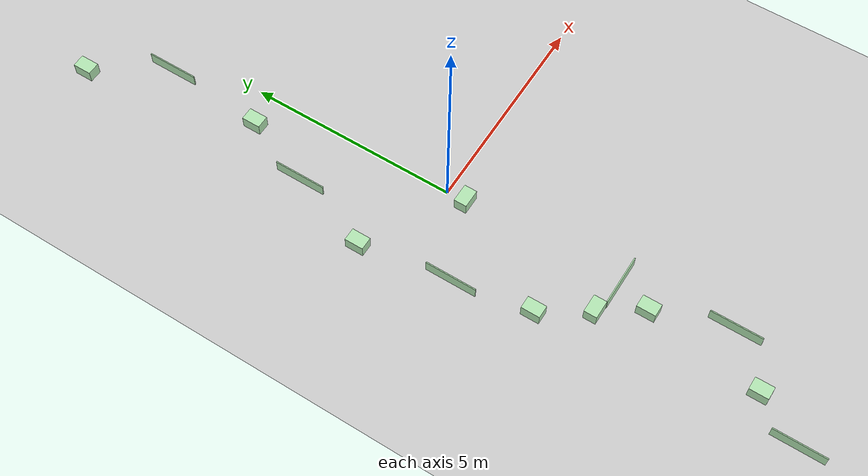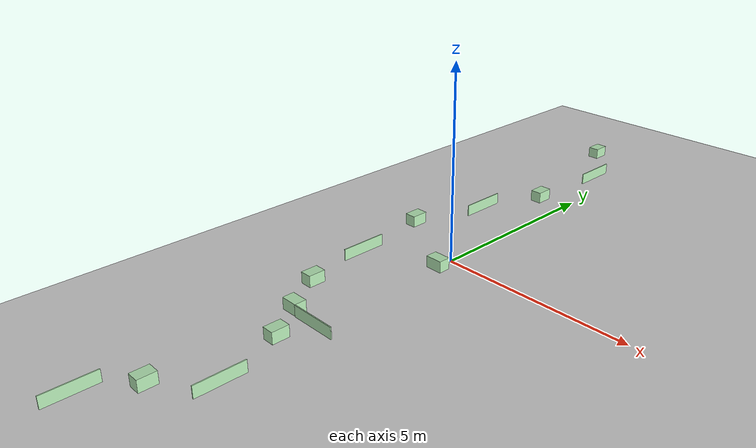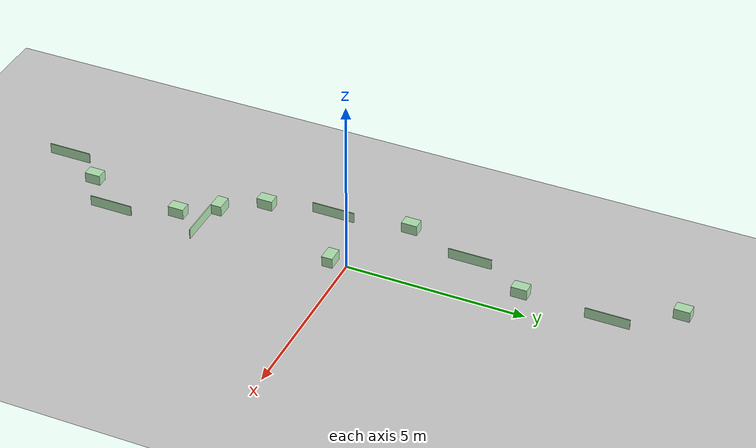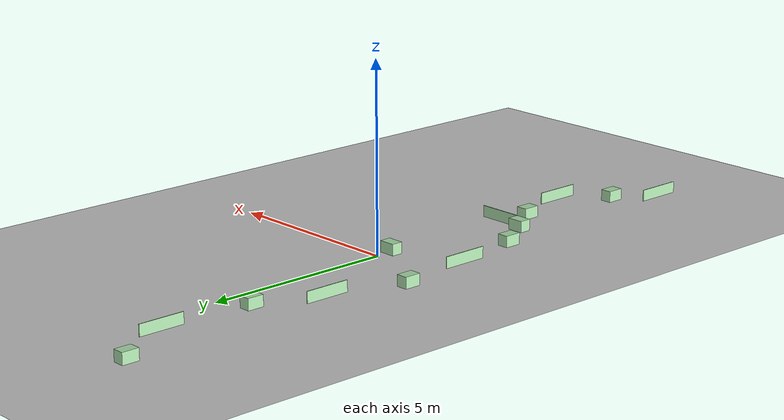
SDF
<sdf version="1.7">
 <world name="default">
  <scene><ambient>0.5 0.5 0.5 1</ambient><background>0.5 0.5 0.5 1</background><shadows>0</shadows></scene>
  <physics name="default_physics" default="0" type="ode">
   <ode>
    <solver>
     <type>quick</type>
     <iters>10</iters>
     <sor>1.3</sor>
     <use_dynamic_moi_rescaling>0</use_dynamic_moi_rescaling>
    </solver>
    <constraints>
     <cfm>0</cfm>
     <erp>0.2</erp>
     <contact_max_correcting_vel>100</contact_max_correcting_vel>
     <contact_surface_layer>0.001</contact_surface_layer>
    </constraints>
   </ode>
   <real_time_update_rate>1000</real_time_update_rate>
   <max_step_size>0.001</max_step_size>
   <real_time_factor>1</real_time_factor>
  </physics>
  <light name="directional_light_1" type="directional">
   <cast_shadows>0</cast_shadows>
   <pose>0 0 30 0.1 0.1 0</pose>
   <diffuse>1 1 1 1</diffuse>
   <specular>0.1 0.1 0.1 1</specular>
   <attenuation><range>300</range></attenuation>
   <direction>0.1 0.1 -1</direction>
   <spot><inner_angle>0</inner_angle><outer_angle>0</outer_angle><falloff>0</falloff></spot>
  </light>
  <model name="ground_plane">
   <static>1</static>
   <link name="link">
    <collision name="collision">
     <geometry><plane><normal>0 0 1</normal><size>800 800</size></plane></geometry>
     <surface><friction><ode><mu>100</mu><mu2>50</mu2></ode></friction></surface>
    </collision>
    <visual name="visual">
     <cast_shadows>0</cast_shadows>
     <geometry><plane><normal>0 0 1</normal><size>800 800</size></plane></geometry>
     <material>
      <script><uri>file://media/materials/scripts/gazebo.material</uri><name>Gazebo/Grey</name></script>
     </material>
    </visual>
   </link>
  </model>
  <model name="wall_1">
   <static>1</static>
   <link name="wall_1_link">
    <pose>0 -4.2672 0.15 0 -0 1.5708</pose>
    <collision name="wall_1_collision"><geometry><box><size>0.0254 1.2192 0.3</size></box></geometry></collision>
    <visual name="wall_1_visual">
     <geometry><box><size>0.0254 1.2192 0.3</size></box></geometry>
     <material>
      <ambient>0.7 0.9 0.7 1</ambient>
      <diffuse>0.7 0.9 0.7 1</diffuse>
      <specular>0.1 0.1 0.1 1</specular>
      <emissive>0 0 0 0</emissive>
     </material>
    </visual>
   </link>
  </model>
  <model name="wall_5">
   <static>1</static>
   <link name="wall_5_link">
    <pose>-1.8288 -1.2192 0.15 0 -0 0</pose>
    <collision name="wall_5_collision"><geometry><box><size>0.0254 1.2192 0.3</size></box></geometry></collision>
    <visual name="wall_5_visual">
     <geometry><box><size>0.0254 1.2192 0.3</size></box></geometry>
     <material>
      <ambient>0.7 0.9 0.7 1</ambient>
      <diffuse>0.7 0.9 0.7 1</diffuse>
      <specular>0.1 0.1 0.1 1</specular>
      <emissive>0 0 0 0</emissive>
     </material>
    </visual>
   </link>
  </model>
  <model name="box_7">
   <static>1</static>
   <link name="box_7_link">
    <pose>0 -0.4572 0.15 0 -0 1.5708</pose>
    <collision name="box_7_collision"><geometry><box><size>0.3048 0.4445 0.3</size></box></geometry></collision>
    <visual name="box_7_visual">
     <geometry><box><size>0.3048 0.4445 0.3</size></box></geometry>
     <material>
      <ambient>0.7 0.9 0.7 1</ambient>
      <diffuse>0.7 0.9 0.7 1</diffuse>
      <specular>0.1 0.1 0.1 1</specular>
      <emissive>0 0 0 0</emissive>
     </material>
    </visual>
   </link>
  </model>
  <model name="box_10">
   <static>1</static>
   <link name="box_10_link">
    <pose>-0.83185 -4.1148 0.15 0 -0 1.5708</pose>
    <collision name="box_10_collision"><geometry><box><size>0.3048 0.4445 0.3</size></box></geometry></collision>
    <visual name="box_10_visual">
     <geometry><box><size>0.3048 0.4445 0.3</size></box></geometry>
     <material>
      <ambient>0.7 0.9 0.7 1</ambient>
      <diffuse>0.7 0.9 0.7 1</diffuse>
      <specular>0.1 0.1 0.1 1</specular>
      <emissive>0 0 0 0</emissive>
     </material>
    </visual>
   </link>
  </model>
  <model name="box_13">
   <static>1</static>
   <link name="box_13_link">
    <pose>-1.524 -3.048 0.15 0 -0 0</pose>
    <collision name="box_13_collision"><geometry><box><size>0.3048 0.4445 0.3</size></box></geometry></collision>
    <visual name="box_13_visual">
     <geometry><box><size>0.3048 0.4445 0.3</size></box></geometry>
     <material>
      <ambient>0.7 0.9 0.7 1</ambient>
      <diffuse>0.7 0.9 0.7 1</diffuse>
      <specular>0.1 0.1 0.1 1</specular>
      <emissive>0 0 0 0</emissive>
     </material>
    </visual>
   </link>
  </model>
  <model name="box_15">
   <static>1</static>
   <link name="box_15_link">
    <pose>-2.1336 0.9144 0.15 0 -0 0</pose>
    <collision name="box_15_collision"><geometry><box><size>0.3048 0.4445 0.3</size></box></geometry></collision>
    <visual name="box_15_visual">
     <geometry><box><size>0.3048 0.4445 0.3</size></box></geometry>
     <material>
      <ambient>0.7 0.9 0.7 1</ambient>
      <diffuse>0.7 0.9 0.7 1</diffuse>
      <specular>0.1 0.1 0.1 1</specular>
      <emissive>0 0 0 0</emissive>
     </material>
    </visual>
   </link>
  </model>
  <gravity>0 0 -9.81</gravity>
  <magnetic_field>6e-06 2.3e-05 -4.2e-05</magnetic_field>
  <atmosphere type="adiabatic"/>
  <spherical_coordinates>
   <surface_model>EARTH_WGS84</surface_model>
   <latitude_deg>0</latitude_deg>
   <longitude_deg>0</longitude_deg>
   <elevation>0</elevation>
   <heading_deg>0</heading_deg>
  </spherical_coordinates>
  <model name="wall_5_clone">
   <static>1</static>
   <link name="wall_5_link">
    <pose>-1.8288 -1.2192 0.15 0 -0 0</pose>
    <collision name="wall_5_collision"><geometry><box><size>0.0254 1.2192 0.3</size></box></geometry></collision>
    <visual name="wall_5_visual">
     <geometry><box><size>0.0254 1.2192 0.3</size></box></geometry>
     <material>
      <ambient>0.7 0.9 0.7 1</ambient>
      <diffuse>0.7 0.9 0.7 1</diffuse>
      <specular>0.1 0.1 0.1 1</specular>
      <emissive>0 0 0 0</emissive>
     </material>
    </visual>
   </link>
   <pose>0.517234 -7.74185 0 0 -0 0</pose>
  </model>
  <model name="wall_5_clone_0">
   <static>1</static>
   <link name="wall_5_link">
    <pose>-1.8288 -1.2192 0.15 0 -0 0</pose>
    <collision name="wall_5_collision"><geometry><box><size>0.0254 1.2192 0.3</size></box></geometry></collision>
    <visual name="wall_5_visual">
     <geometry><box><size>0.0254 1.2192 0.3</size></box></geometry>
     <material>
      <ambient>0.7 0.9 0.7 1</ambient>
      <diffuse>0.7 0.9 0.7 1</diffuse>
      <specular>0.1 0.1 0.1 1</specular>
      <emissive>0 0 0 0</emissive>
     </material>
    </visual>
   </link>
   <pose>2.18832 -5.54943 0 0 -0 0</pose>
  </model>
  <model name="wall_5_clone_1">
   <static>1</static>
   <link name="wall_5_link">
    <pose>-1.8288 -1.2192 0.15 0 -0 0</pose>
    <collision name="wall_5_collision"><geometry><box><size>0.0254 1.2192 0.3</size></box></geometry></collision>
    <visual name="wall_5_visual">
     <geometry><box><size>0.0254 1.2192 0.3</size></box></geometry>
     <material>
      <ambient>0.7 0.9 0.7 1</ambient>
      <diffuse>0.7 0.9 0.7 1</diffuse>
      <specular>0.1 0.1 0.1 1</specular>
      <emissive>0 0 0 0</emissive>
     </material>
    </visual>
   </link>
   <pose>0.357412 4.09035 0 0 -0 0</pose>
  </model>
  <model name="wall_5_clone_2">
   <static>1</static>
   <link name="wall_5_link">
    <pose>-1.8288 -1.2192 0.15 0 -0 0</pose>
    <collision name="wall_5_collision"><geometry><box><size>0.0254 1.2192 0.3</size></box></geometry></collision>
    <visual name="wall_5_visual">
     <geometry><box><size>0.0254 1.2192 0.3</size></box></geometry>
     <material>
      <ambient>0.7 0.9 0.7 1</ambient>
      <diffuse>0.7 0.9 0.7 1</diffuse>
      <specular>0.1 0.1 0.1 1</specular>
      <emissive>0 0 0 0</emissive>
     </material>
    </visual>
   </link>
   <pose>1.20665 8.20206 0 0 -0 0</pose>
  </model>
  <model name="box_13_clone">
   <static>1</static>
   <link name="box_13_link">
    <pose>-1.524 -3.048 0.15 0 -0 0</pose>
    <collision name="box_13_collision"><geometry><box><size>0.3048 0.4445 0.3</size></box></geometry></collision>
    <visual name="box_13_visual">
     <geometry><box><size>0.3048 0.4445 0.3</size></box></geometry>
     <material>
      <ambient>0.7 0.9 0.7 1</ambient>
      <diffuse>0.7 0.9 0.7 1</diffuse>
      <specular>0.1 0.1 0.1 1</specular>
      <emissive>0 0 0 0</emissive>
     </material>
    </visual>
   </link>
   <pose>0.876374 -4.76711 0 0 -0 0</pose>
  </model>
  <model name="box_13_clone_0">
   <static>1</static>
   <link name="box_13_link">
    <pose>-1.524 -3.048 0.15 0 -0 0</pose>
    <collision name="box_13_collision"><geometry><box><size>0.3048 0.4445 0.3</size></box></geometry></collision>
    <visual name="box_13_visual">
     <geometry><box><size>0.3048 0.4445 0.3</size></box></geometry>
     <material>
      <ambient>0.7 0.9 0.7 1</ambient>
      <diffuse>0.7 0.9 0.7 1</diffuse>
      <specular>0.1 0.1 0.1 1</specular>
      <emissive>0 0 0 0</emissive>
     </material>
    </visual>
   </link>
   <pose>1.30715 -1.99812 0 0 -0 0</pose>
  </model>
  <model name="box_13_clone_1">
   <static>1</static>
   <link name="box_13_link">
    <pose>-1.524 -3.048 0.15 0 -0 0</pose>
    <collision name="box_13_collision"><geometry><box><size>0.3048 0.4445 0.3</size></box></geometry></collision>
    <visual name="box_13_visual">
     <geometry><box><size>0.3048 0.4445 0.3</size></box></geometry>
     <material>
      <ambient>0.7 0.9 0.7 1</ambient>
      <diffuse>0.7 0.9 0.7 1</diffuse>
      <specular>0.1 0.1 0.1 1</specular>
      <emissive>0 0 0 0</emissive>
     </material>
    </visual>
   </link>
   <pose>0.733949 7.61124 0 0 -0 0</pose>
  </model>
  <model name="box_13_clone_2">
   <static>1</static>
   <link name="box_13_link">
    <pose>-1.524 -3.048 0.15 0 -0 0</pose>
    <collision name="box_13_collision"><geometry><box><size>0.3048 0.4445 0.3</size></box></geometry></collision>
    <visual name="box_13_visual">
     <geometry><box><size>0.3048 0.4445 0.3</size></box></geometry>
     <material>
      <ambient>0.7 0.9 0.7 1</ambient>
      <diffuse>0.7 0.9 0.7 1</diffuse>
      <specular>0.1 0.1 0.1 1</specular>
      <emissive>0 0 0 0</emissive>
     </material>
    </visual>
   </link>
   <pose>-0.137747 11.7054 0 0 -0 0</pose>
  </model>
 </world>
</sdf>
